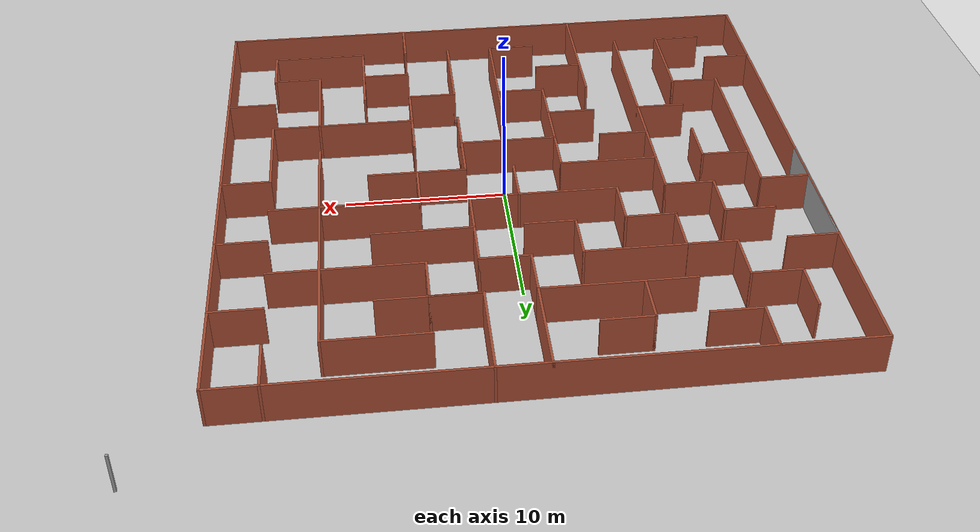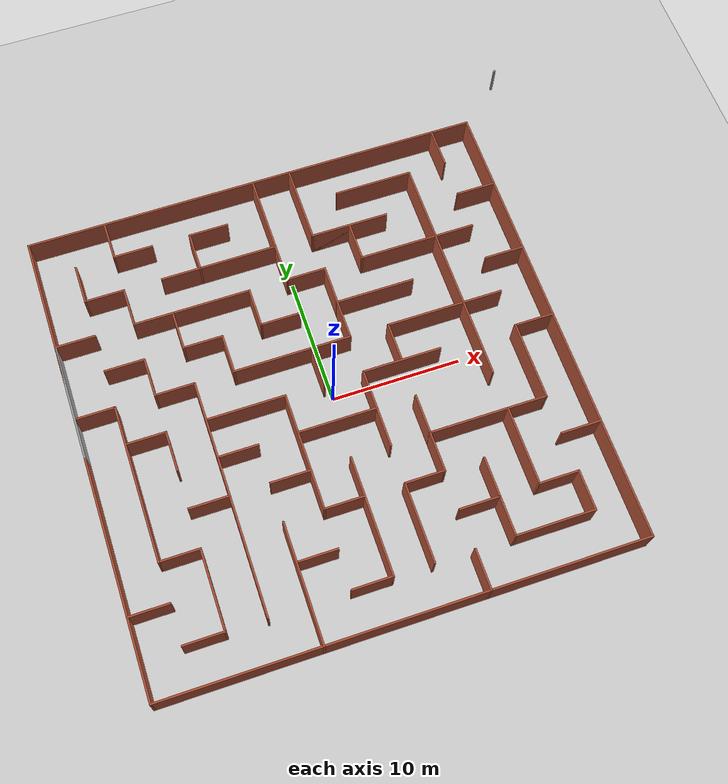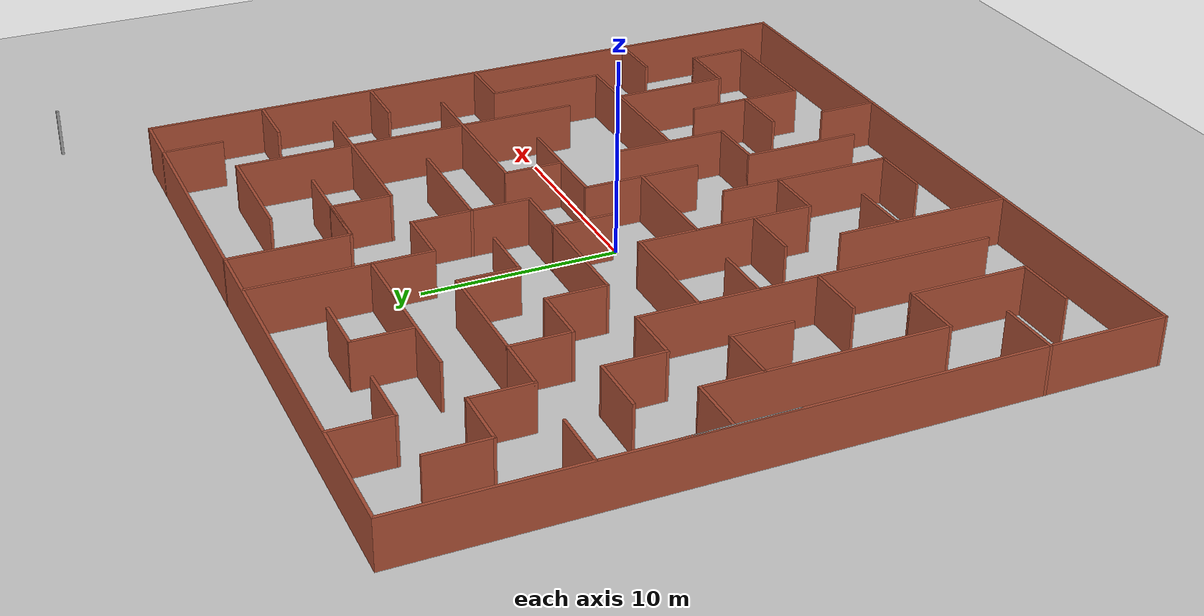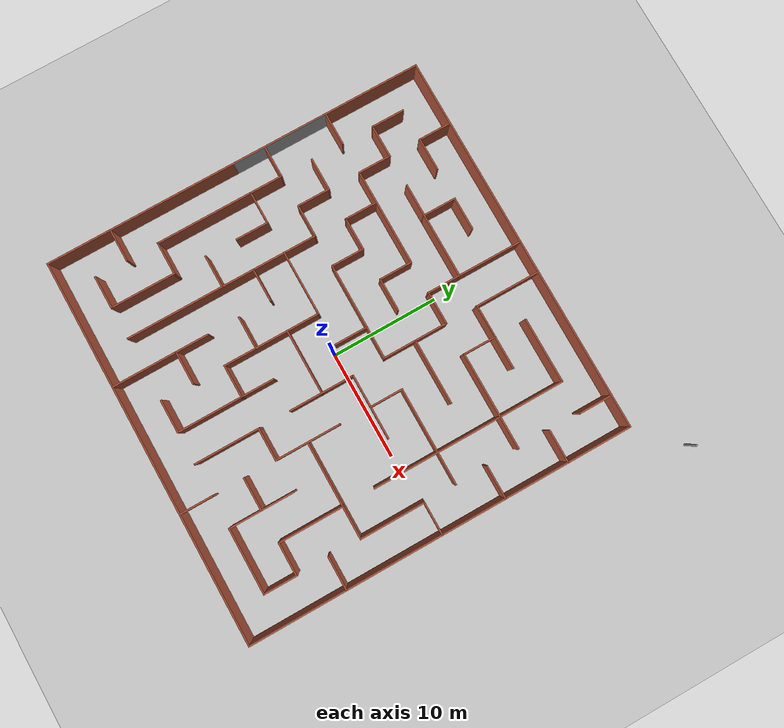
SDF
<sdf version="1.5">
 <world name="default">
  <light name="sun" type="directional">
   <pose>0 0 10 0 -0 0</pose>
   <diffuse>0.8 0.8 0.8 1</diffuse>
   <specular>0.2 0.2 0.2 1</specular>
   <attenuation>
    <range>1000</range>
    <constant>0.9</constant>
    <linear>0.01</linear>
    <quadratic>0.001</quadratic>
   </attenuation>
   <direction>-0.5 0.1 -0.9</direction>
  </light>
  <physics name="default_physics" default="0" type="ode">
   <max_step_size>0.001</max_step_size>
   <real_time_factor>1</real_time_factor>
   <real_time_update_rate>1000</real_time_update_rate>
   <gravity>0 0 -9.8</gravity>
   <magnetic_field>5.5645e-06 2.28758e-05 -4.23884e-05</magnetic_field>
  </physics>
  <scene><ambient>0.4 0.4 0.4 1</ambient><background>0.7 0.7 0.7 1</background><shadows>1</shadows></scene>
  <spherical_coordinates>
   <surface_model>EARTH_WGS84</surface_model>
   <latitude_deg>0</latitude_deg>
   <longitude_deg>0</longitude_deg>
   <elevation>0</elevation>
   <heading_deg>0</heading_deg>
  </spherical_coordinates>
  <model name="maze1">
   <pose>1.47521 2.4777 0 0 -0 0</pose>
   <link name="Wall_0">
    <collision name="Wall_0_Collision">
     <geometry><box><size>36.15 0.15 2.5</size></box></geometry>
     <pose>0 0 1.25 0 -0 0</pose>
    </collision>
    <visual name="Wall_0_Visual">
     <pose>0 0 1.25 0 -0 0</pose>
     <geometry><box><size>36.15 0.15 2.5</size></box></geometry>
     <material>
      <script><uri>file://media/materials/scripts/gazebo.material</uri><name>Gazebo/Bricks</name></script>
      <ambient>1 1 1 1</ambient>
     </material>
    </visual>
    <pose>-2 -20 0 0 -0 0</pose>
   </link>
   <link name="Wall_10">
    <collision name="Wall_10_Collision">
     <geometry><box><size>36.15 0.15 2.5</size></box></geometry>
     <pose>0 0 1.25 0 -0 0</pose>
    </collision>
    <visual name="Wall_10_Visual">
     <pose>0 0 1.25 0 -0 0</pose>
     <geometry><box><size>36.15 0.15 2.5</size></box></geometry>
     <material>
      <script><uri>file://media/materials/scripts/gazebo.material</uri><name>Gazebo/Bricks</name></script>
      <ambient>1 1 1 1</ambient>
     </material>
    </visual>
    <pose>-2 16 0 0 -0 3.14159</pose>
   </link>
   <link name="Wall_101">
    <collision name="Wall_101_Collision">
     <geometry><box><size>3.15 0.15 2.5</size></box></geometry>
     <pose>0 0 1.25 0 -0 0</pose>
    </collision>
    <visual name="Wall_101_Visual">
     <pose>0 0 1.25 0 -0 0</pose>
     <geometry><box><size>3.15 0.15 2.5</size></box></geometry>
     <material>
      <script><uri>file://media/materials/scripts/gazebo.material</uri><name>Gazebo/Bricks</name></script>
      <ambient>1 1 1 1</ambient>
     </material>
    </visual>
    <pose>13 -15.5 0 0 -0 1.5708</pose>
   </link>
   <link name="Wall_103">
    <collision name="Wall_103_Collision">
     <geometry><box><size>3.15 0.15 2.5</size></box></geometry>
     <pose>0 0 1.25 0 -0 0</pose>
    </collision>
    <visual name="Wall_103_Visual">
     <pose>0 0 1.25 0 -0 0</pose>
     <geometry><box><size>3.15 0.15 2.5</size></box></geometry>
     <material>
      <script><uri>file://media/materials/scripts/gazebo.material</uri><name>Gazebo/Bricks</name></script>
      <ambient>1 1 1 1</ambient>
     </material>
    </visual>
    <pose>11.5 -14 0 0 -0 0</pose>
   </link>
   <link name="Wall_105">
    <collision name="Wall_105_Collision">
     <geometry><box><size>6.15 0.15 2.5</size></box></geometry>
     <pose>0 0 1.25 0 -0 0</pose>
    </collision>
    <visual name="Wall_105_Visual">
     <pose>0 0 1.25 0 -0 0</pose>
     <geometry><box><size>6.15 0.15 2.5</size></box></geometry>
     <material>
      <script><uri>file://media/materials/scripts/gazebo.material</uri><name>Gazebo/Bricks</name></script>
      <ambient>1 1 1 1</ambient>
     </material>
    </visual>
    <pose>10 -17 0 0 -0 3.14159</pose>
   </link>
   <link name="Wall_107">
    <collision name="Wall_107_Collision">
     <geometry><box><size>3.15 0.15 2.5</size></box></geometry>
     <pose>0 0 1.25 0 -0 0</pose>
    </collision>
    <visual name="Wall_107_Visual">
     <pose>0 0 1.25 0 -0 0</pose>
     <geometry><box><size>3.15 0.15 2.5</size></box></geometry>
     <material>
      <script><uri>file://media/materials/scripts/gazebo.material</uri><name>Gazebo/Bricks</name></script>
      <ambient>1 1 1 1</ambient>
     </material>
    </visual>
    <pose>14.5 -2 0 0 -0 3.14159</pose>
   </link>
   <link name="Wall_109">
    <collision name="Wall_109_Collision">
     <geometry><box><size>3.15 0.15 2.5</size></box></geometry>
     <pose>0 0 1.25 0 -0 0</pose>
    </collision>
    <visual name="Wall_109_Visual">
     <pose>0 0 1.25 0 -0 0</pose>
     <geometry><box><size>3.15 0.15 2.5</size></box></geometry>
     <material>
      <script><uri>file://media/materials/scripts/gazebo.material</uri><name>Gazebo/Bricks</name></script>
      <ambient>1 1 1 1</ambient>
     </material>
    </visual>
    <pose>14.5 4 0 0 -0 0</pose>
   </link>
   <link name="Wall_111">
    <collision name="Wall_111_Collision">
     <geometry><box><size>6.15 0.15 2.5</size></box></geometry>
     <pose>0 0 1.25 0 -0 0</pose>
    </collision>
    <visual name="Wall_111_Visual">
     <pose>0 0 1.25 0 -0 0</pose>
     <geometry><box><size>6.15 0.15 2.5</size></box></geometry>
     <material>
      <script><uri>file://media/materials/scripts/gazebo.material</uri><name>Gazebo/Bricks</name></script>
      <ambient>1 1 1 1</ambient>
     </material>
    </visual>
    <pose>10 -11 0 0 -0 1.5708</pose>
   </link>
   <link name="Wall_113">
    <collision name="Wall_113_Collision">
     <geometry><box><size>9.15 0.15 2.5</size></box></geometry>
     <pose>0 0 1.25 0 -0 0</pose>
    </collision>
    <visual name="Wall_113_Visual">
     <pose>0 0 1.25 0 -0 0</pose>
     <geometry><box><size>9.15 0.15 2.5</size></box></geometry>
     <material>
      <script><uri>file://media/materials/scripts/gazebo.material</uri><name>Gazebo/Bricks</name></script>
      <ambient>1 1 1 1</ambient>
     </material>
    </visual>
    <pose>8.5 -8 0 0 -0 0</pose>
   </link>
   <link name="Wall_115">
    <collision name="Wall_115_Collision">
     <geometry><box><size>3.15 0.15 2.5</size></box></geometry>
     <pose>0 0 1.25 0 -0 0</pose>
    </collision>
    <visual name="Wall_115_Visual">
     <pose>0 0 1.25 0 -0 0</pose>
     <geometry><box><size>3.15 0.15 2.5</size></box></geometry>
     <material>
      <script><uri>file://media/materials/scripts/gazebo.material</uri><name>Gazebo/Bricks</name></script>
      <ambient>1 1 1 1</ambient>
     </material>
    </visual>
    <pose>14.5 -11 0 0 -0 3.14159</pose>
   </link>
   <link name="Wall_118">
    <collision name="Wall_118_Collision">
     <geometry><box><size>3.15 0.15 2.5</size></box></geometry>
     <pose>0 0 1.25 0 -0 0</pose>
    </collision>
    <visual name="Wall_118_Visual">
     <pose>0 0 1.25 0 -0 0</pose>
     <geometry><box><size>3.15 0.15 2.5</size></box></geometry>
     <material>
      <script><uri>file://media/materials/scripts/gazebo.material</uri><name>Gazebo/Bricks</name></script>
      <ambient>1 1 1 1</ambient>
     </material>
    </visual>
    <pose>-2 8.5 0 0 0 -1.5708</pose>
   </link>
   <link name="Wall_120">
    <collision name="Wall_120_Collision">
     <geometry><box><size>3.15 0.15 2.5</size></box></geometry>
     <pose>0 0 1.25 0 -0 0</pose>
    </collision>
    <visual name="Wall_120_Visual">
     <pose>0 0 1.25 0 -0 0</pose>
     <geometry><box><size>3.15 0.15 2.5</size></box></geometry>
     <material>
      <script><uri>file://media/materials/scripts/gazebo.material</uri><name>Gazebo/Bricks</name></script>
      <ambient>1 1 1 1</ambient>
     </material>
    </visual>
    <pose>-0.499999 7 0 0 -0 0</pose>
   </link>
   <link name="Wall_122">
    <collision name="Wall_122_Collision">
     <geometry><box><size>6.15 0.15 2.5</size></box></geometry>
     <pose>0 0 1.25 0 -0 0</pose>
    </collision>
    <visual name="Wall_122_Visual">
     <pose>0 0 1.25 0 -0 0</pose>
     <geometry><box><size>6.15 0.15 2.5</size></box></geometry>
     <material>
      <script><uri>file://media/materials/scripts/gazebo.material</uri><name>Gazebo/Bricks</name></script>
      <ambient>1 1 1 1</ambient>
     </material>
    </visual>
    <pose>1 4 0 0 0 -1.5708</pose>
   </link>
   <link name="Wall_124">
    <collision name="Wall_124_Collision">
     <geometry><box><size>6.15 0.15 2.5</size></box></geometry>
     <pose>0 0 1.25 0 -0 0</pose>
    </collision>
    <visual name="Wall_124_Visual">
     <pose>0 0 1.25 0 -0 0</pose>
     <geometry><box><size>6.15 0.15 2.5</size></box></geometry>
     <material>
      <script><uri>file://media/materials/scripts/gazebo.material</uri><name>Gazebo/Bricks</name></script>
      <ambient>1 1 1 1</ambient>
     </material>
    </visual>
    <pose>7 -14 0 0 0 -1.5708</pose>
   </link>
   <link name="Wall_126">
    <collision name="Wall_126_Collision">
     <geometry><box><size>6.15 0.15 2.5</size></box></geometry>
     <pose>0 0 1.25 0 -0 0</pose>
    </collision>
    <visual name="Wall_126_Visual">
     <pose>0 0 1.25 0 -0 0</pose>
     <geometry><box><size>6.15 0.15 2.5</size></box></geometry>
     <material>
      <script><uri>file://media/materials/scripts/gazebo.material</uri><name>Gazebo/Bricks</name></script>
      <ambient>1 1 1 1</ambient>
     </material>
    </visual>
    <pose>4 4 0 0 -0 0</pose>
   </link>
   <link name="Wall_128">
    <collision name="Wall_128_Collision">
     <geometry><box><size>3.15 0.15 2.5</size></box></geometry>
     <pose>0 0 1.25 0 -0 0</pose>
    </collision>
    <visual name="Wall_128_Visual">
     <pose>0 0 1.25 0 -0 0</pose>
     <geometry><box><size>3.15 0.15 2.5</size></box></geometry>
     <material>
      <script><uri>file://media/materials/scripts/gazebo.material</uri><name>Gazebo/Bricks</name></script>
      <ambient>1 1 1 1</ambient>
     </material>
    </visual>
    <pose>5.5 -14 0 0 -0 0</pose>
   </link>
   <link name="Wall_130">
    <collision name="Wall_130_Collision">
     <geometry><box><size>9.15 0.15 2.5</size></box></geometry>
     <pose>0 0 1.25 0 -0 0</pose>
    </collision>
    <visual name="Wall_130_Visual">
     <pose>0 0 1.25 0 -0 0</pose>
     <geometry><box><size>9.15 0.15 2.5</size></box></geometry>
     <material>
      <script><uri>file://media/materials/scripts/gazebo.material</uri><name>Gazebo/Bricks</name></script>
      <ambient>1 1 1 1</ambient>
     </material>
    </visual>
    <pose>-3.5 1 0 0 -0 3.14159</pose>
   </link>
   <link name="Wall_132">
    <collision name="Wall_132_Collision">
     <geometry><box><size>3.15 0.15 2.5</size></box></geometry>
     <pose>0 0 1.25 0 -0 0</pose>
    </collision>
    <visual name="Wall_132_Visual">
     <pose>0 0 1.25 0 -0 0</pose>
     <geometry><box><size>3.15 0.15 2.5</size></box></geometry>
     <material>
      <script><uri>file://media/materials/scripts/gazebo.material</uri><name>Gazebo/Bricks</name></script>
      <ambient>1 1 1 1</ambient>
     </material>
    </visual>
    <pose>-8 2.5 0 0 -0 1.5708</pose>
   </link>
   <link name="Wall_134">
    <collision name="Wall_134_Collision">
     <geometry><box><size>3.15 0.15 2.5</size></box></geometry>
     <pose>0 0 1.25 0 -0 0</pose>
    </collision>
    <visual name="Wall_134_Visual">
     <pose>0 0 1.25 0 -0 0</pose>
     <geometry><box><size>3.15 0.15 2.5</size></box></geometry>
     <material>
      <script><uri>file://media/materials/scripts/gazebo.material</uri><name>Gazebo/Bricks</name></script>
      <ambient>1 1 1 1</ambient>
     </material>
    </visual>
    <pose>-9.5 4 0 0 -0 3.14159</pose>
   </link>
   <link name="Wall_136">
    <collision name="Wall_136_Collision">
     <geometry><box><size>6.15 0.15 2.5</size></box></geometry>
     <pose>0 0 1.25 0 -0 0</pose>
    </collision>
    <visual name="Wall_136_Visual">
     <pose>0 0 1.25 0 -0 0</pose>
     <geometry><box><size>6.15 0.15 2.5</size></box></geometry>
     <material>
      <script><uri>file://media/materials/scripts/gazebo.material</uri><name>Gazebo/Bricks</name></script>
      <ambient>1 1 1 1</ambient>
     </material>
    </visual>
    <pose>1 -14 0 0 -0 1.5708</pose>
   </link>
   <link name="Wall_138">
    <collision name="Wall_138_Collision">
     <geometry><box><size>3.15 0.15 2.5</size></box></geometry>
     <pose>0 0 1.25 0 -0 0</pose>
    </collision>
    <visual name="Wall_138_Visual">
     <pose>0 0 1.25 0 -0 0</pose>
     <geometry><box><size>3.15 0.15 2.5</size></box></geometry>
     <material>
      <script><uri>file://media/materials/scripts/gazebo.material</uri><name>Gazebo/Bricks</name></script>
      <ambient>1 1 1 1</ambient>
     </material>
    </visual>
    <pose>2.5 -11 0 0 -0 0</pose>
   </link>
   <link name="Wall_140">
    <collision name="Wall_140_Collision">
     <geometry><box><size>3.15 0.15 2.5</size></box></geometry>
     <pose>0 0 1.25 0 -0 0</pose>
    </collision>
    <visual name="Wall_140_Visual">
     <pose>0 0 1.25 0 -0 0</pose>
     <geometry><box><size>3.15 0.15 2.5</size></box></geometry>
     <material>
      <script><uri>file://media/materials/scripts/gazebo.material</uri><name>Gazebo/Bricks</name></script>
      <ambient>1 1 1 1</ambient>
     </material>
    </visual>
    <pose>-11 5.5 0 0 -0 1.5708</pose>
   </link>
   <link name="Wall_142">
    <collision name="Wall_142_Collision">
     <geometry><box><size>6.15 0.15 2.5</size></box></geometry>
     <pose>0 0 1.25 0 -0 0</pose>
    </collision>
    <visual name="Wall_142_Visual">
     <pose>0 0 1.25 0 -0 0</pose>
     <geometry><box><size>6.15 0.15 2.5</size></box></geometry>
     <material>
      <script><uri>file://media/materials/scripts/gazebo.material</uri><name>Gazebo/Bricks</name></script>
      <ambient>1 1 1 1</ambient>
     </material>
    </visual>
    <pose>4 -8 0 0 -0 1.5708</pose>
   </link>
   <link name="Wall_144">
    <collision name="Wall_144_Collision">
     <geometry><box><size>6.15 0.15 2.5</size></box></geometry>
     <pose>0 0 1.25 0 -0 0</pose>
    </collision>
    <visual name="Wall_144_Visual">
     <pose>0 0 1.25 0 -0 0</pose>
     <geometry><box><size>6.15 0.15 2.5</size></box></geometry>
     <material>
      <script><uri>file://media/materials/scripts/gazebo.material</uri><name>Gazebo/Bricks</name></script>
      <ambient>1 1 1 1</ambient>
     </material>
    </visual>
    <pose>13 -5 0 0 -0 1.5708</pose>
   </link>
   <link name="Wall_146">
    <collision name="Wall_146_Collision">
     <geometry><box><size>3.15 0.15 2.5</size></box></geometry>
     <pose>0 0 1.25 0 -0 0</pose>
    </collision>
    <visual name="Wall_146_Visual">
     <pose>0 0 1.25 0 -0 0</pose>
     <geometry><box><size>3.15 0.15 2.5</size></box></geometry>
     <material>
      <script><uri>file://media/materials/scripts/gazebo.material</uri><name>Gazebo/Bricks</name></script>
      <ambient>1 1 1 1</ambient>
     </material>
    </visual>
    <pose>-3.5 4 0 0 -0 0</pose>
   </link>
   <link name="Wall_148">
    <collision name="Wall_148_Collision">
     <geometry><box><size>3.15 0.15 2.5</size></box></geometry>
     <pose>0 0 1.25 0 -0 0</pose>
    </collision>
    <visual name="Wall_148_Visual">
     <pose>0 0 1.25 0 -0 0</pose>
     <geometry><box><size>3.15 0.15 2.5</size></box></geometry>
     <material>
      <script><uri>file://media/materials/scripts/gazebo.material</uri><name>Gazebo/Bricks</name></script>
      <ambient>1 1 1 1</ambient>
     </material>
    </visual>
    <pose>-5 5.5 0 0 0 -1.5708</pose>
   </link>
   <link name="Wall_15">
    <collision name="Wall_15_Collision">
     <geometry><box><size>9.15 0.15 2.5</size></box></geometry>
     <pose>0 0 1.25 0 -0 0</pose>
    </collision>
    <visual name="Wall_15_Visual">
     <pose>0 0 1.25 0 -0 0</pose>
     <geometry><box><size>9.15 0.15 2.5</size></box></geometry>
     <material>
      <script><uri>file://media/materials/scripts/gazebo.material</uri><name>Gazebo/Bricks</name></script>
      <ambient>1 1 1 1</ambient>
     </material>
    </visual>
    <pose>-8 -15.5 0 0 -0 1.5708</pose>
   </link>
   <link name="Wall_150">
    <collision name="Wall_150_Collision">
     <geometry><box><size>3.15 0.15 2.5</size></box></geometry>
     <pose>0 0 1.25 0 -0 0</pose>
    </collision>
    <visual name="Wall_150_Visual">
     <pose>0 0 1.25 0 -0 0</pose>
     <geometry><box><size>3.15 0.15 2.5</size></box></geometry>
     <material>
      <script><uri>file://media/materials/scripts/gazebo.material</uri><name>Gazebo/Bricks</name></script>
      <ambient>1 1 1 1</ambient>
     </material>
    </visual>
    <pose>-2 -0.499999 0 0 0 -1.5708</pose>
   </link>
   <link name="Wall_152">
    <collision name="Wall_152_Collision">
     <geometry><box><size>3.15 0.15 2.5</size></box></geometry>
     <pose>0 0 1.25 0 -0 0</pose>
    </collision>
    <visual name="Wall_152_Visual">
     <pose>0 0 1.25 0 -0 0</pose>
     <geometry><box><size>3.15 0.15 2.5</size></box></geometry>
     <material>
      <script><uri>file://media/materials/scripts/gazebo.material</uri><name>Gazebo/Bricks</name></script>
      <ambient>1 1 1 1</ambient>
     </material>
    </visual>
    <pose>-3.5 -17 0 0 -0 0</pose>
   </link>
   <link name="Wall_154">
    <collision name="Wall_154_Collision">
     <geometry><box><size>6.15 0.15 2.5</size></box></geometry>
     <pose>0 0 1.25 0 -0 0</pose>
    </collision>
    <visual name="Wall_154_Visual">
     <pose>0 0 1.25 0 -0 0</pose>
     <geometry><box><size>6.15 0.15 2.5</size></box></geometry>
     <material>
      <script><uri>file://media/materials/scripts/gazebo.material</uri><name>Gazebo/Bricks</name></script>
      <ambient>1 1 1 1</ambient>
     </material>
    </visual>
    <pose>-8 -2 0 0 -0 0</pose>
   </link>
   <link name="Wall_156">
    <collision name="Wall_156_Collision">
     <geometry><box><size>9.15 0.15 2.5</size></box></geometry>
     <pose>0 0 1.25 0 -0 0</pose>
    </collision>
    <visual name="Wall_156_Visual">
     <pose>0 0 1.25 0 -0 0</pose>
     <geometry><box><size>9.15 0.15 2.5</size></box></geometry>
     <material>
      <script><uri>file://media/materials/scripts/gazebo.material</uri><name>Gazebo/Bricks</name></script>
      <ambient>1 1 1 1</ambient>
     </material>
    </visual>
    <pose>-2 -12.5 0 0 -0 1.5708</pose>
   </link>
   <link name="Wall_158">
    <collision name="Wall_158_Collision">
     <geometry><box><size>3.15 0.15 2.5</size></box></geometry>
     <pose>0 0 1.25 0 -0 0</pose>
    </collision>
    <visual name="Wall_158_Visual">
     <pose>0 0 1.25 0 -0 0</pose>
     <geometry><box><size>3.15 0.15 2.5</size></box></geometry>
     <material>
      <script><uri>file://media/materials/scripts/gazebo.material</uri><name>Gazebo/Bricks</name></script>
      <ambient>1 1 1 1</ambient>
     </material>
    </visual>
    <pose>-3.5 -11 0 0 -0 3.14159</pose>
   </link>
   <link name="Wall_160">
    <collision name="Wall_160_Collision">
     <geometry><box><size>6.15 0.15 2.5</size></box></geometry>
     <pose>0 0 1.25 0 -0 0</pose>
    </collision>
    <visual name="Wall_160_Visual">
     <pose>0 0 1.25 0 -0 0</pose>
     <geometry><box><size>6.15 0.15 2.5</size></box></geometry>
     <material>
      <script><uri>file://media/materials/scripts/gazebo.material</uri><name>Gazebo/Bricks</name></script>
      <ambient>1 1 1 1</ambient>
     </material>
    </visual>
    <pose>-2 -5 0 0 -0 0</pose>
   </link>
   <link name="Wall_162">
    <collision name="Wall_162_Collision">
     <geometry><box><size>6.15 0.15 2.5</size></box></geometry>
     <pose>0 0 1.25 0 -0 0</pose>
    </collision>
    <visual name="Wall_162_Visual">
     <pose>0 0 1.25 0 -0 0</pose>
     <geometry><box><size>6.15 0.15 2.5</size></box></geometry>
     <material>
      <script><uri>file://media/materials/scripts/gazebo.material</uri><name>Gazebo/Bricks</name></script>
      <ambient>1 1 1 1</ambient>
     </material>
    </visual>
    <pose>1 -5 0 0 -0 1.5708</pose>
   </link>
   <link name="Wall_164">
    <collision name="Wall_164_Collision">
     <geometry><box><size>6.15 0.15 2.5</size></box></geometry>
     <pose>0 0 1.25 0 -0 0</pose>
    </collision>
    <visual name="Wall_164_Visual">
     <pose>0 0 1.25 0 -0 0</pose>
     <geometry><box><size>6.15 0.15 2.5</size></box></geometry>
     <material>
      <script><uri>file://media/materials/scripts/gazebo.material</uri><name>Gazebo/Bricks</name></script>
      <ambient>1 1 1 1</ambient>
     </material>
    </visual>
    <pose>4 -2 0 0 -0 0</pose>
   </link>
   <link name="Wall_166">
    <collision name="Wall_166_Collision">
     <geometry><box><size>3.15 0.15 2.5</size></box></geometry>
     <pose>0 0 1.25 0 -0 0</pose>
    </collision>
    <visual name="Wall_166_Visual">
     <pose>0 0 1.25 0 -0 0</pose>
     <geometry><box><size>3.15 0.15 2.5</size></box></geometry>
     <material>
      <script><uri>file://media/materials/scripts/gazebo.material</uri><name>Gazebo/Bricks</name></script>
      <ambient>1 1 1 1</ambient>
     </material>
    </visual>
    <pose>4 -0.499999 0 0 -0 1.5708</pose>
   </link>
   <link name="Wall_17">
    <collision name="Wall_17_Collision">
     <geometry><box><size>3.15 0.15 2.5</size></box></geometry>
     <pose>0 0 1.25 0 -0 0</pose>
    </collision>
    <visual name="Wall_17_Visual">
     <pose>0 0 1.25 0 -0 0</pose>
     <geometry><box><size>3.15 0.15 2.5</size></box></geometry>
     <material>
      <script><uri>file://media/materials/scripts/gazebo.material</uri><name>Gazebo/Bricks</name></script>
      <ambient>1 1 1 1</ambient>
     </material>
    </visual>
    <pose>4 -18.5 0 0 -0 1.5708</pose>
   </link>
   <link name="Wall_19">
    <collision name="Wall_19_Collision">
     <geometry><box><size>3.15 0.15 2.5</size></box></geometry>
     <pose>0 0 1.25 0 -0 0</pose>
    </collision>
    <visual name="Wall_19_Visual">
     <pose>0 0 1.25 0 -0 0</pose>
     <geometry><box><size>3.15 0.15 2.5</size></box></geometry>
     <material>
      <script><uri>file://media/materials/scripts/gazebo.material</uri><name>Gazebo/Bricks</name></script>
      <ambient>1 1 1 1</ambient>
     </material>
    </visual>
    <pose>-15.5 -17 0 0 -0 0</pose>
   </link>
   <link name="Wall_2">
    <collision name="Wall_2_Collision">
     <geometry><box><size>36.15 0.15 2.5</size></box></geometry>
     <pose>0 0 1.25 0 -0 0</pose>
    </collision>
    <visual name="Wall_2_Visual">
     <pose>0 0 1.25 0 -0 0</pose>
     <geometry><box><size>36.15 0.15 2.5</size></box></geometry>
     <material>
      <script><uri>file://media/materials/scripts/gazebo.material</uri><name>Gazebo/Bricks</name></script>
      <ambient>1 1 1 1</ambient>
     </material>
    </visual>
    <pose>-20 -2 0 0 -0 1.5708</pose>
   </link>
   <link name="Wall_21">
    <collision name="Wall_21_Collision">
     <geometry><box><size>3.15 0.15 2.5</size></box></geometry>
     <pose>0 0 1.25 0 -0 0</pose>
    </collision>
    <visual name="Wall_21_Visual">
     <pose>0 0 1.25 0 -0 0</pose>
     <geometry><box><size>3.15 0.15 2.5</size></box></geometry>
     <material>
      <script><uri>file://media/materials/scripts/gazebo.material</uri><name>Gazebo/Bricks</name></script>
      <ambient>1 1 1 1</ambient>
     </material>
    </visual>
    <pose>-18.5 -14 0 0 -0 0</pose>
   </link>
   <link name="Wall_23">
    <collision name="Wall_23_Collision">
     <geometry><box><size>6.15 0.15 2.5</size></box></geometry>
     <pose>0 0 1.25 0 -0 0</pose>
    </collision>
    <visual name="Wall_23_Visual">
     <pose>0 0 1.25 0 -0 0</pose>
     <geometry><box><size>6.15 0.15 2.5</size></box></geometry>
     <material>
      <script><uri>file://media/materials/scripts/gazebo.material</uri><name>Gazebo/Bricks</name></script>
      <ambient>1 1 1 1</ambient>
     </material>
    </visual>
    <pose>-14 -14 0 0 -0 1.5708</pose>
   </link>
   <link name="Wall_25">
    <collision name="Wall_25_Collision">
     <geometry><box><size>3.15 0.15 2.5</size></box></geometry>
     <pose>0 0 1.25 0 -0 0</pose>
    </collision>
    <visual name="Wall_25_Visual">
     <pose>0 0 1.25 0 -0 0</pose>
     <geometry><box><size>3.15 0.15 2.5</size></box></geometry>
     <material>
      <script><uri>file://media/materials/scripts/gazebo.material</uri><name>Gazebo/Bricks</name></script>
      <ambient>1 1 1 1</ambient>
     </material>
    </visual>
    <pose>-15.5 -11 0 0 -0 0</pose>
   </link>
   <link name="Wall_27">
    <collision name="Wall_27_Collision">
     <geometry><box><size>12.15 0.15 2.5</size></box></geometry>
     <pose>0 0 1.25 0 -0 0</pose>
    </collision>
    <visual name="Wall_27_Visual">
     <pose>0 0 1.25 0 -0 0</pose>
     <geometry><box><size>12.15 0.15 2.5</size></box></geometry>
     <material>
      <script><uri>file://media/materials/scripts/gazebo.material</uri><name>Gazebo/Bricks</name></script>
      <ambient>1 1 1 1</ambient>
     </material>
    </visual>
    <pose>-17 -5 0 0 -0 1.5708</pose>
   </link>
   <link name="Wall_29">
    <collision name="Wall_29_Collision">
     <geometry><box><size>9.15 0.15 2.5</size></box></geometry>
     <pose>0 0 1.25 0 -0 0</pose>
    </collision>
    <visual name="Wall_29_Visual">
     <pose>0 0 1.25 0 -0 0</pose>
     <geometry><box><size>9.15 0.15 2.5</size></box></geometry>
     <material>
      <script><uri>file://media/materials/scripts/gazebo.material</uri><name>Gazebo/Grey</name></script>
      <ambient>1 1 1 1</ambient>
     </material>
    </visual>
    <pose>-20 2.5 0 0 -0 1.5708</pose>
   </link>
   <link name="Wall_30">
    <collision name="Wall_30_Collision">
     <geometry><box><size>3.15 0.15 2.5</size></box></geometry>
     <pose>0 0 1.25 0 -0 0</pose>
    </collision>
    <visual name="Wall_30_Visual">
     <pose>0 0 1.25 0 -0 0</pose>
     <geometry><box><size>3.15 0.15 2.5</size></box></geometry>
     <material>
      <script><uri>file://media/materials/scripts/gazebo.material</uri><name>Gazebo/Bricks</name></script>
      <ambient>1 1 1 1</ambient>
     </material>
    </visual>
    <pose>-18.5 7 0 0 -0 0</pose>
   </link>
   <link name="Wall_33">
    <collision name="Wall_33_Collision">
     <geometry><box><size>3.15 0.15 2.5</size></box></geometry>
     <pose>0 0 1.25 0 -0 0</pose>
    </collision>
    <visual name="Wall_33_Visual">
     <pose>0 0 1.25 0 -0 0</pose>
     <geometry><box><size>3.15 0.15 2.5</size></box></geometry>
     <material>
      <script><uri>file://media/materials/scripts/gazebo.material</uri><name>Gazebo/Bricks</name></script>
      <ambient>1 1 1 1</ambient>
     </material>
    </visual>
    <pose>-18.5 1 0 0 -0 0</pose>
   </link>
   <link name="Wall_35">
    <collision name="Wall_35_Collision">
     <geometry><box><size>18.15 0.15 2.5</size></box></geometry>
     <pose>0 0 1.25 0 -0 0</pose>
    </collision>
    <visual name="Wall_35_Visual">
     <pose>0 0 1.25 0 -0 0</pose>
     <geometry><box><size>18.15 0.15 2.5</size></box></geometry>
     <material>
      <script><uri>file://media/materials/scripts/gazebo.material</uri><name>Gazebo/Bricks</name></script>
      <ambient>1 1 1 1</ambient>
     </material>
    </visual>
    <pose>-11 -8 0 0 -0 1.5708</pose>
   </link>
   <link name="Wall_37">
    <collision name="Wall_37_Collision">
     <geometry><box><size>3.15 0.15 2.5</size></box></geometry>
     <pose>0 0 1.25 0 -0 0</pose>
    </collision>
    <visual name="Wall_37_Visual">
     <pose>0 0 1.25 0 -0 0</pose>
     <geometry><box><size>3.15 0.15 2.5</size></box></geometry>
     <material>
      <script><uri>file://media/materials/scripts/gazebo.material</uri><name>Gazebo/Bricks</name></script>
      <ambient>1 1 1 1</ambient>
     </material>
    </visual>
    <pose>-12.5 -8 0 0 -0 0</pose>
   </link>
   <link name="Wall_39">
    <collision name="Wall_39_Collision">
     <geometry><box><size>3.15 0.15 2.5</size></box></geometry>
     <pose>0 0 1.25 0 -0 0</pose>
    </collision>
    <visual name="Wall_39_Visual">
     <pose>0 0 1.25 0 -0 0</pose>
     <geometry><box><size>3.15 0.15 2.5</size></box></geometry>
     <material>
      <script><uri>file://media/materials/scripts/gazebo.material</uri><name>Gazebo/Bricks</name></script>
      <ambient>1 1 1 1</ambient>
     </material>
    </visual>
    <pose>-6.5 -8 0 0 -0 0</pose>
   </link>
   <link name="Wall_41">
    <collision name="Wall_41_Collision">
     <geometry><box><size>3.15 0.15 2.5</size></box></geometry>
     <pose>0 0 1.25 0 -0 0</pose>
    </collision>
    <visual name="Wall_41_Visual">
     <pose>0 0 1.25 0 -0 0</pose>
     <geometry><box><size>3.15 0.15 2.5</size></box></geometry>
     <material>
      <script><uri>file://media/materials/scripts/gazebo.material</uri><name>Gazebo/Bricks</name></script>
      <ambient>1 1 1 1</ambient>
     </material>
    </visual>
    <pose>-14 -3.5 0 0 0 -1.5708</pose>
   </link>
   <link name="Wall_43">
    <collision name="Wall_43_Collision">
     <geometry><box><size>3.15 0.15 2.5</size></box></geometry>
     <pose>0 0 1.25 0 -0 0</pose>
    </collision>
    <visual name="Wall_43_Visual">
     <pose>0 0 1.25 0 -0 0</pose>
     <geometry><box><size>3.15 0.15 2.5</size></box></geometry>
     <material>
      <script><uri>file://media/materials/scripts/gazebo.material</uri><name>Gazebo/Bricks</name></script>
      <ambient>1 1 1 1</ambient>
     </material>
    </visual>
    <pose>-15.5 -2 0 0 -0 0</pose>
   </link>
   <link name="Wall_45">
    <collision name="Wall_45_Collision">
     <geometry><box><size>3.15 0.15 2.5</size></box></geometry>
     <pose>0 0 1.25 0 -0 0</pose>
    </collision>
    <visual name="Wall_45_Visual">
     <pose>0 0 1.25 0 -0 0</pose>
     <geometry><box><size>3.15 0.15 2.5</size></box></geometry>
     <material>
      <script><uri>file://media/materials/scripts/gazebo.material</uri><name>Gazebo/Bricks</name></script>
      <ambient>1 1 1 1</ambient>
     </material>
    </visual>
    <pose>-6.5 -14 0 0 -0 0</pose>
   </link>
   <link name="Wall_47">
    <collision name="Wall_47_Collision">
     <geometry><box><size>3.15 0.15 2.5</size></box></geometry>
     <pose>0 0 1.25 0 -0 0</pose>
    </collision>
    <visual name="Wall_47_Visual">
     <pose>0 0 1.25 0 -0 0</pose>
     <geometry><box><size>3.15 0.15 2.5</size></box></geometry>
     <material>
      <script><uri>file://media/materials/scripts/gazebo.material</uri><name>Gazebo/Bricks</name></script>
      <ambient>1 1 1 1</ambient>
     </material>
    </visual>
    <pose>-15.5 4 0 0 -0 3.14159</pose>
   </link>
   <link name="Wall_49">
    <collision name="Wall_49_Collision">
     <geometry><box><size>3.15 0.15 2.5</size></box></geometry>
     <pose>0 0 1.25 0 -0 0</pose>
    </collision>
    <visual name="Wall_49_Visual">
     <pose>0 0 1.25 0 -0 0</pose>
     <geometry><box><size>3.15 0.15 2.5</size></box></geometry>
     <material>
      <script><uri>file://media/materials/scripts/gazebo.material</uri><name>Gazebo/Bricks</name></script>
      <ambient>1 1 1 1</ambient>
     </material>
    </visual>
    <pose>-14 2.5 0 0 -0 1.5708</pose>
   </link>
   <link name="Wall_51">
    <collision name="Wall_51_Collision">
     <geometry><box><size>3.15 0.15 2.5</size></box></geometry>
     <pose>0 0 1.25 0 -0 0</pose>
    </collision>
    <visual name="Wall_51_Visual">
     <pose>0 0 1.25 0 -0 0</pose>
     <geometry><box><size>3.15 0.15 2.5</size></box></geometry>
     <material>
      <script><uri>file://media/materials/scripts/gazebo.material</uri><name>Gazebo/Bricks</name></script>
      <ambient>1 1 1 1</ambient>
     </material>
    </visual>
    <pose>-12.5 1 0 0 -0 3.14159</pose>
   </link>
   <link name="Wall_53">
    <collision name="Wall_53_Collision">
     <geometry><box><size>3.15 0.15 2.5</size></box></geometry>
     <pose>0 0 1.25 0 -0 0</pose>
    </collision>
    <visual name="Wall_53_Visual">
     <pose>0 0 1.25 0 -0 0</pose>
     <geometry><box><size>3.15 0.15 2.5</size></box></geometry>
     <material>
      <script><uri>file://media/materials/scripts/gazebo.material</uri><name>Gazebo/Bricks</name></script>
      <ambient>1 1 1 1</ambient>
     </material>
    </visual>
    <pose>-9.5 -5 0 0 -0 0</pose>
   </link>
   <link name="Wall_55">
    <collision name="Wall_55_Collision">
     <geometry><box><size>9.15 0.15 2.5</size></box></geometry>
     <pose>0 0 1.25 0 -0 0</pose>
    </collision>
    <visual name="Wall_55_Visual">
     <pose>0 0 1.25 0 -0 0</pose>
     <geometry><box><size>9.15 0.15 2.5</size></box></geometry>
     <material>
      <script><uri>file://media/materials/scripts/gazebo.material</uri><name>Gazebo/Bricks</name></script>
      <ambient>1 1 1 1</ambient>
     </material>
    </visual>
    <pose>-5 -6.5 0 0 -0 1.5708</pose>
   </link>
   <link name="Wall_57">
    <collision name="Wall_57_Collision">
     <geometry><box><size>3.15 0.15 2.5</size></box></geometry>
     <pose>0 0 1.25 0 -0 0</pose>
    </collision>
    <visual name="Wall_57_Visual">
     <pose>0 0 1.25 0 -0 0</pose>
     <geometry><box><size>3.15 0.15 2.5</size></box></geometry>
     <material>
      <script><uri>file://media/materials/scripts/gazebo.material</uri><name>Gazebo/Bricks</name></script>
      <ambient>1 1 1 1</ambient>
     </material>
    </visual>
    <pose>-17 11.5 0 0 -0 1.5708</pose>
   </link>
   <link name="Wall_59">
    <collision name="Wall_59_Collision">
     <geometry><box><size>6.15 0.15 2.5</size></box></geometry>
     <pose>0 0 1.25 0 -0 0</pose>
    </collision>
    <visual name="Wall_59_Visual">
     <pose>0 0 1.25 0 -0 0</pose>
     <geometry><box><size>6.15 0.15 2.5</size></box></geometry>
     <material>
      <script><uri>file://media/materials/scripts/gazebo.material</uri><name>Gazebo/Bricks</name></script>
      <ambient>1 1 1 1</ambient>
     </material>
    </visual>
    <pose>-2 13 0 0 -0 1.5708</pose>
   </link>
   <link name="Wall_6">
    <collision name="Wall_6_Collision">
     <geometry><box><size>0.15 0.15 2.5</size></box></geometry>
     <pose>0 0 1.25 0 -0 0</pose>
    </collision>
    <visual name="Wall_6_Visual">
     <pose>0 0 1.25 0 -0 0</pose>
     <geometry><box><size>0.15 0.15 2.5</size></box></geometry>
     <material>
      <script><uri>file://media/materials/scripts/gazebo.material</uri><name>Gazebo/Grey</name></script>
      <ambient>1 1 1 1</ambient>
     </material>
    </visual>
    <pose>20 20 0 0 -0 0</pose>
   </link>
   <link name="Wall_61">
    <collision name="Wall_61_Collision">
     <geometry><box><size>3.15 0.15 2.5</size></box></geometry>
     <pose>0 0 1.25 0 -0 0</pose>
    </collision>
    <visual name="Wall_61_Visual">
     <pose>0 0 1.25 0 -0 0</pose>
     <geometry><box><size>3.15 0.15 2.5</size></box></geometry>
     <material>
      <script><uri>file://media/materials/scripts/gazebo.material</uri><name>Gazebo/Bricks</name></script>
      <ambient>1 1 1 1</ambient>
     </material>
    </visual>
    <pose>-6.5 13 0 0 -0 0</pose>
   </link>
   <link name="Wall_63">
    <collision name="Wall_63_Collision">
     <geometry><box><size>3.15 0.15 2.5</size></box></geometry>
     <pose>0 0 1.25 0 -0 0</pose>
    </collision>
    <visual name="Wall_63_Visual">
     <pose>0 0 1.25 0 -0 0</pose>
     <geometry><box><size>3.15 0.15 2.5</size></box></geometry>
     <material>
      <script><uri>file://media/materials/scripts/gazebo.material</uri><name>Gazebo/Bricks</name></script>
      <ambient>1 1 1 1</ambient>
     </material>
    </visual>
    <pose>-14 14.5 0 0 -0 1.5708</pose>
   </link>
   <link name="Wall_65">
    <collision name="Wall_65_Collision">
     <geometry><box><size>3.15 0.15 2.5</size></box></geometry>
     <pose>0 0 1.25 0 -0 0</pose>
    </collision>
    <visual name="Wall_65_Visual">
     <pose>0 0 1.25 0 -0 0</pose>
     <geometry><box><size>3.15 0.15 2.5</size></box></geometry>
     <material>
      <script><uri>file://media/materials/scripts/gazebo.material</uri><name>Gazebo/Bricks</name></script>
      <ambient>1 1 1 1</ambient>
     </material>
    </visual>
    <pose>2.5 10 0 0 -0 0</pose>
   </link>
   <link name="Wall_67">
    <collision name="Wall_67_Collision">
     <geometry><box><size>6.15 0.15 2.5</size></box></geometry>
     <pose>0 0 1.25 0 -0 0</pose>
    </collision>
    <visual name="Wall_67_Visual">
     <pose>0 0 1.25 0 -0 0</pose>
     <geometry><box><size>6.15 0.15 2.5</size></box></geometry>
     <material>
      <script><uri>file://media/materials/scripts/gazebo.material</uri><name>Gazebo/Bricks</name></script>
      <ambient>1 1 1 1</ambient>
     </material>
    </visual>
    <pose>1 13 0 0 -0 1.5708</pose>
   </link>
   <link name="Wall_69">
    <collision name="Wall_69_Collision">
     <geometry><box><size>6.15 0.15 2.5</size></box></geometry>
     <pose>0 0 1.25 0 -0 0</pose>
    </collision>
    <visual name="Wall_69_Visual">
     <pose>0 0 1.25 0 -0 0</pose>
     <geometry><box><size>6.15 0.15 2.5</size></box></geometry>
     <material>
      <script><uri>file://media/materials/scripts/gazebo.material</uri><name>Gazebo/Bricks</name></script>
      <ambient>1 1 1 1</ambient>
     </material>
    </visual>
    <pose>4 10 0 0 -0 0</pose>
   </link>
   <link name="Wall_71">
    <collision name="Wall_71_Collision">
     <geometry><box><size>6.15 0.15 2.5</size></box></geometry>
     <pose>0 0 1.25 0 -0 0</pose>
    </collision>
    <visual name="Wall_71_Visual">
     <pose>0 0 1.25 0 -0 0</pose>
     <geometry><box><size>6.15 0.15 2.5</size></box></geometry>
     <material>
      <script><uri>file://media/materials/scripts/gazebo.material</uri><name>Gazebo/Bricks</name></script>
      <ambient>1 1 1 1</ambient>
     </material>
    </visual>
    <pose>-8 7 0 0 -0 0</pose>
   </link>
   <link name="Wall_73">
    <collision name="Wall_73_Collision">
     <geometry><box><size>6.15 0.15 2.5</size></box></geometry>
     <pose>0 0 1.25 0 -0 0</pose>
    </collision>
    <visual name="Wall_73_Visual">
     <pose>0 0 1.25 0 -0 0</pose>
     <geometry><box><size>6.15 0.15 2.5</size></box></geometry>
     <material>
      <script><uri>file://media/materials/scripts/gazebo.material</uri><name>Gazebo/Grey</name></script>
      <ambient>1 1 1 1</ambient>
     </material>
    </visual>
    <pose>-8 7 0 0 -0 0</pose>
   </link>
   <link name="Wall_75">
    <collision name="Wall_75_Collision">
     <geometry><box><size>3.15 0.15 2.5</size></box></geometry>
     <pose>0 0 1.25 0 -0 0</pose>
    </collision>
    <visual name="Wall_75_Visual">
     <pose>0 0 1.25 0 -0 0</pose>
     <geometry><box><size>3.15 0.15 2.5</size></box></geometry>
     <material>
      <script><uri>file://media/materials/scripts/gazebo.material</uri><name>Gazebo/Bricks</name></script>
      <ambient>1 1 1 1</ambient>
     </material>
    </visual>
    <pose>-8 11.5 0 0 -0 1.5708</pose>
   </link>
   <link name="Wall_77">
    <collision name="Wall_77_Collision">
     <geometry><box><size>3.15 0.15 2.5</size></box></geometry>
     <pose>0 0 1.25 0 -0 0</pose>
    </collision>
    <visual name="Wall_77_Visual">
     <pose>0 0 1.25 0 -0 0</pose>
     <geometry><box><size>3.15 0.15 2.5</size></box></geometry>
     <material>
      <script><uri>file://media/materials/scripts/gazebo.material</uri><name>Gazebo/Bricks</name></script>
      <ambient>1 1 1 1</ambient>
     </material>
    </visual>
    <pose>-12.5 7 0 0 -0 0</pose>
   </link>
   <link name="Wall_79">
    <collision name="Wall_79_Collision">
     <geometry><box><size>3.15 0.15 2.5</size></box></geometry>
     <pose>0 0 1.25 0 -0 0</pose>
    </collision>
    <visual name="Wall_79_Visual">
     <pose>0 0 1.25 0 -0 0</pose>
     <geometry><box><size>3.15 0.15 2.5</size></box></geometry>
     <material>
      <script><uri>file://media/materials/scripts/gazebo.material</uri><name>Gazebo/Bricks</name></script>
      <ambient>1 1 1 1</ambient>
     </material>
    </visual>
    <pose>-14 8.5 0 0 0 -1.5708</pose>
   </link>
   <link name="Wall_8">
    <collision name="Wall_8_Collision">
     <geometry><box><size>36.15 0.15 2.5</size></box></geometry>
     <pose>0 0 1.25 0 -0 0</pose>
    </collision>
    <visual name="Wall_8_Visual">
     <pose>0 0 1.25 0 -0 0</pose>
     <geometry><box><size>36.15 0.15 2.5</size></box></geometry>
     <material>
      <script><uri>file://media/materials/scripts/gazebo.material</uri><name>Gazebo/Bricks</name></script>
      <ambient>1 1 1 1</ambient>
     </material>
    </visual>
    <pose>16 -2 0 0 0 -1.5708</pose>
   </link>
   <link name="Wall_81">
    <collision name="Wall_81_Collision">
     <geometry><box><size>9.15 0.15 2.5</size></box></geometry>
     <pose>0 0 1.25 0 -0 0</pose>
    </collision>
    <visual name="Wall_81_Visual">
     <pose>0 0 1.25 0 -0 0</pose>
     <geometry><box><size>9.15 0.15 2.5</size></box></geometry>
     <material>
      <script><uri>file://media/materials/scripts/gazebo.material</uri><name>Gazebo/Bricks</name></script>
      <ambient>1 1 1 1</ambient>
     </material>
    </visual>
    <pose>-6.5 10 0 0 -0 0</pose>
   </link>
   <link name="Wall_83">
    <collision name="Wall_83_Collision">
     <geometry><box><size>3.15 0.15 2.5</size></box></geometry>
     <pose>0 0 1.25 0 -0 0</pose>
    </collision>
    <visual name="Wall_83_Visual">
     <pose>0 0 1.25 0 -0 0</pose>
     <geometry><box><size>3.15 0.15 2.5</size></box></geometry>
     <material>
      <script><uri>file://media/materials/scripts/gazebo.material</uri><name>Gazebo/Bricks</name></script>
      <ambient>1 1 1 1</ambient>
     </material>
    </visual>
    <pose>-15.5 10 0 0 -0 0</pose>
   </link>
   <link name="Wall_85">
    <collision name="Wall_85_Collision">
     <geometry><box><size>3.15 0.15 2.5</size></box></geometry>
     <pose>0 0 1.25 0 -0 0</pose>
    </collision>
    <visual name="Wall_85_Visual">
     <pose>0 0 1.25 0 -0 0</pose>
     <geometry><box><size>3.15 0.15 2.5</size></box></geometry>
     <material>
      <script><uri>file://media/materials/scripts/gazebo.material</uri><name>Gazebo/Bricks</name></script>
      <ambient>1 1 1 1</ambient>
     </material>
    </visual>
    <pose>-12.5 13 0 0 -0 0</pose>
   </link>
   <link name="Wall_87">
    <collision name="Wall_87_Collision">
     <geometry><box><size>3.15 0.15 2.5</size></box></geometry>
     <pose>0 0 1.25 0 -0 0</pose>
    </collision>
    <visual name="Wall_87_Visual">
     <pose>0 0 1.25 0 -0 0</pose>
     <geometry><box><size>3.15 0.15 2.5</size></box></geometry>
     <material>
      <script><uri>file://media/materials/scripts/gazebo.material</uri><name>Gazebo/Bricks</name></script>
      <ambient>1 1 1 1</ambient>
     </material>
    </visual>
    <pose>4 8.5 0 0 -0 1.5708</pose>
   </link>
   <link name="Wall_89">
    <collision name="Wall_89_Collision">
     <geometry><box><size>9.15 0.15 2.5</size></box></geometry>
     <pose>0 0 1.25 0 -0 0</pose>
    </collision>
    <visual name="Wall_89_Visual">
     <pose>0 0 1.25 0 -0 0</pose>
     <geometry><box><size>9.15 0.15 2.5</size></box></geometry>
     <material>
      <script><uri>file://media/materials/scripts/gazebo.material</uri><name>Gazebo/Bricks</name></script>
      <ambient>1 1 1 1</ambient>
     </material>
    </visual>
    <pose>8.5 7 0 0 -0 0</pose>
   </link>
   <link name="Wall_91">
    <collision name="Wall_91_Collision">
     <geometry><box><size>3.15 0.15 2.5</size></box></geometry>
     <pose>0 0 1.25 0 -0 0</pose>
    </collision>
    <visual name="Wall_91_Visual">
     <pose>0 0 1.25 0 -0 0</pose>
     <geometry><box><size>3.15 0.15 2.5</size></box></geometry>
     <material>
      <script><uri>file://media/materials/scripts/gazebo.material</uri><name>Gazebo/Bricks</name></script>
      <ambient>1 1 1 1</ambient>
     </material>
    </visual>
    <pose>14.5 10 0 0 -0 3.14159</pose>
   </link>
   <link name="Wall_93">
    <collision name="Wall_93_Collision">
     <geometry><box><size>3.15 0.15 2.5</size></box></geometry>
     <pose>0 0 1.25 0 -0 0</pose>
    </collision>
    <visual name="Wall_93_Visual">
     <pose>0 0 1.25 0 -0 0</pose>
     <geometry><box><size>3.15 0.15 2.5</size></box></geometry>
     <material>
      <script><uri>file://media/materials/scripts/gazebo.material</uri><name>Gazebo/Bricks</name></script>
      <ambient>1 1 1 1</ambient>
     </material>
    </visual>
    <pose>13 14.5 0 0 -0 1.5708</pose>
   </link>
   <link name="Wall_95">
    <collision name="Wall_95_Collision">
     <geometry><box><size>6.15 0.15 2.5</size></box></geometry>
     <pose>0 0 1.25 0 -0 0</pose>
    </collision>
    <visual name="Wall_95_Visual">
     <pose>0 0 1.25 0 -0 0</pose>
     <geometry><box><size>6.15 0.15 2.5</size></box></geometry>
     <material>
      <script><uri>file://media/materials/scripts/gazebo.material</uri><name>Gazebo/Bricks</name></script>
      <ambient>1 1 1 1</ambient>
     </material>
    </visual>
    <pose>7 13 0 0 -0 3.14159</pose>
   </link>
   <link name="Wall_97">
    <collision name="Wall_97_Collision">
     <geometry><box><size>18.15 0.15 2.5</size></box></geometry>
     <pose>0 0 1.25 0 -0 0</pose>
    </collision>
    <visual name="Wall_97_Visual">
     <pose>0 0 1.25 0 -0 0</pose>
     <geometry><box><size>18.15 0.15 2.5</size></box></geometry>
     <material>
      <script><uri>file://media/materials/scripts/gazebo.material</uri><name>Gazebo/Bricks</name></script>
      <ambient>1 1 1 1</ambient>
     </material>
    </visual>
    <pose>10 4 0 0 0 -1.5708</pose>
   </link>
   <link name="Wall_99">
    <collision name="Wall_99_Collision">
     <geometry><box><size>9.15 0.15 2.5</size></box></geometry>
     <pose>0 0 1.25 0 -0 0</pose>
    </collision>
    <visual name="Wall_99_Visual">
     <pose>0 0 1.25 0 -0 0</pose>
     <geometry><box><size>9.15 0.15 2.5</size></box></geometry>
     <material>
      <script><uri>file://media/materials/scripts/gazebo.material</uri><name>Gazebo/Bricks</name></script>
      <ambient>1 1 1 1</ambient>
     </material>
    </visual>
    <pose>8.5 1 0 0 -0 0</pose>
   </link>
   <static>1</static>
  </model>
  <model name="ground_plane">
   <pose>-2 -11 0 0 -0 0</pose>
   <static>1</static>
   <link name="link">
    <collision name="collision">
     <geometry><plane><normal>0 0 1</normal><size>100 100</size></plane></geometry>
     <surface><friction><ode><mu>100</mu><mu2>50</mu2></ode></friction></surface>
    </collision>
    <visual name="visual">
     <cast_shadows>0</cast_shadows>
     <geometry><plane><normal>0 0 1</normal><size>100 100</size></plane></geometry>
     <material>
      <script><uri>file://media/materials/scripts/gazebo.material</uri><name>Gazebo/Grey</name></script>
     </material>
    </visual>
   </link>
  </model>
 </world>
</sdf>
